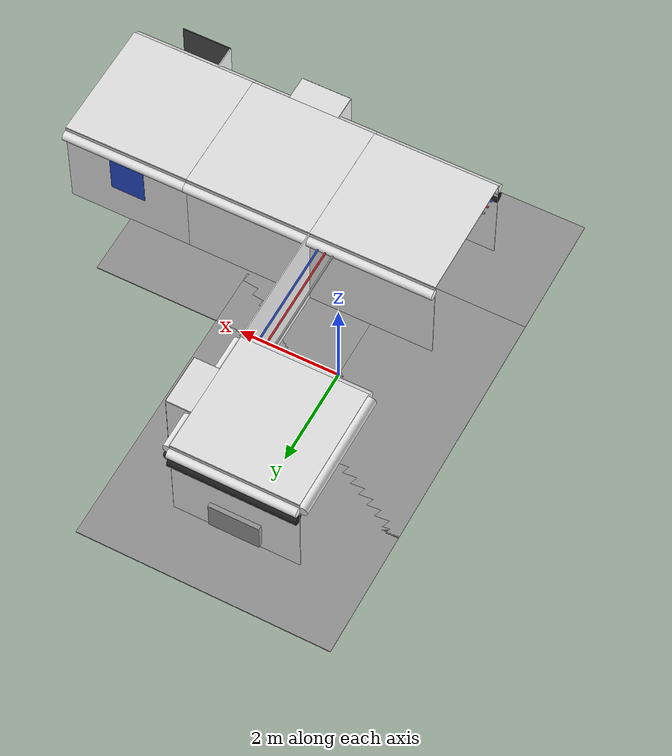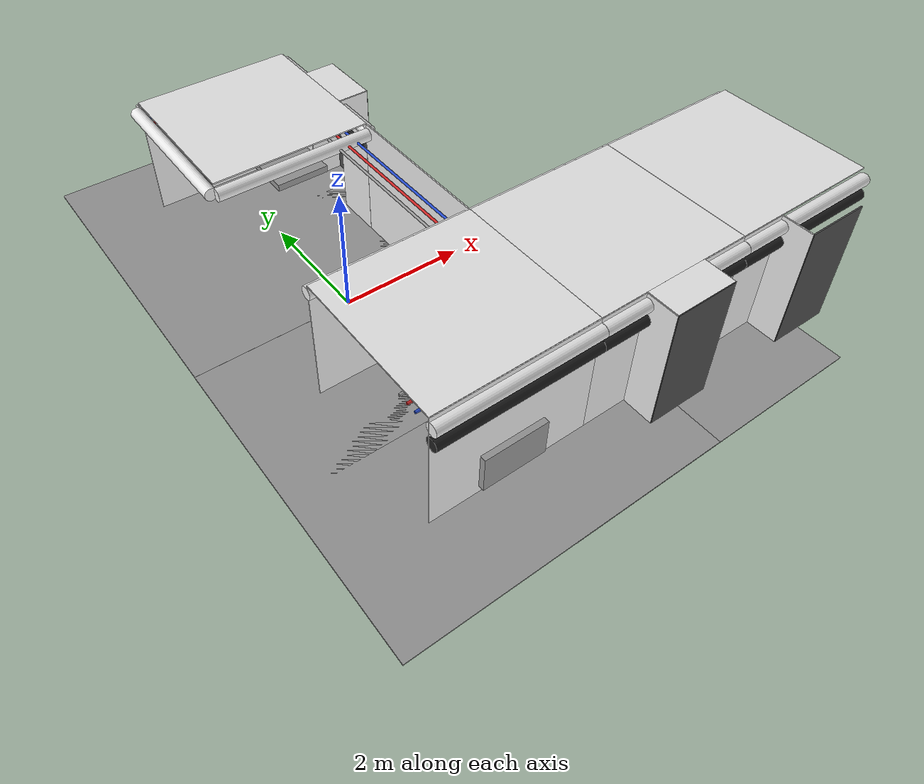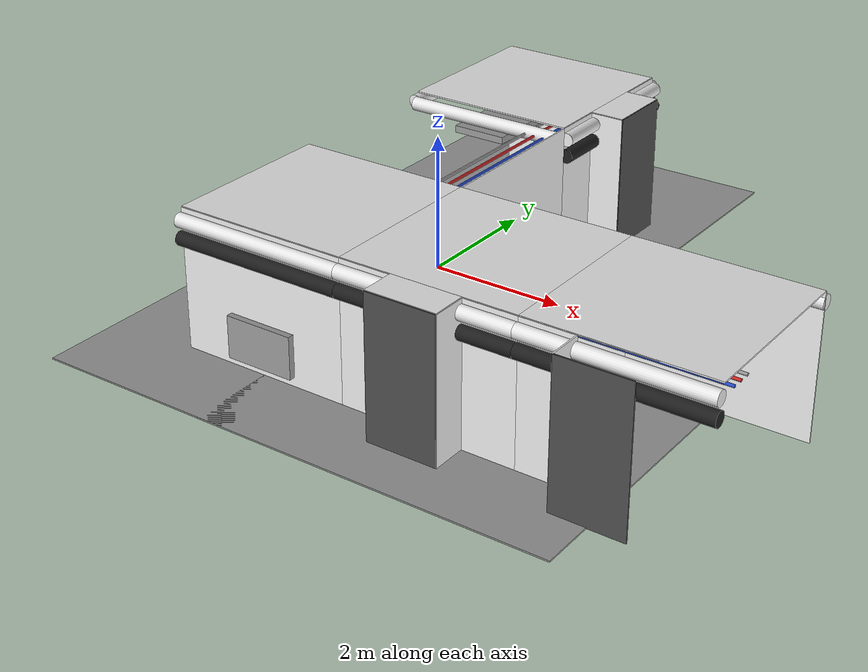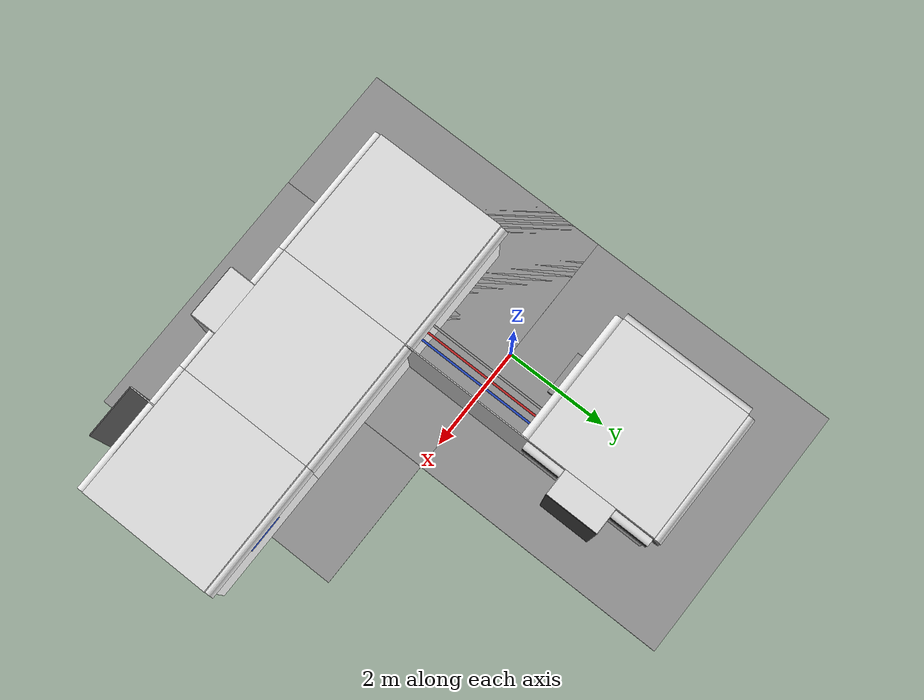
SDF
<sdf version="1.6">
 <world name="default">
  <model name="wall_right_0_0_0_0">
   <static>1</static>
   <pose>1.25 0.0 1.0 0.0 0.0 1.57</pose>
   <link name="link">
    <collision name="collision"><geometry><box><size>2.5 0.02 2.0</size></box></geometry></collision>
    <visual name="visual">
     <material>
      <script><name>Gazebo/White</name><uri>file://media/materials/scripts/gazebo.material</uri></script>
     </material>
     <geometry><box><size>2.5 0.02 2.0</size></box></geometry>
    </visual>
   </link>
  </model>
  <model name="grey_pipe_right_0_0_0_0">
   <static>1</static>
   <pose>0.0 0.0 1.84 0.0 0.0 0.0</pose>
   <link name="link_0">
    <visual name="visual">
     <pose>0.7 0 0 1.57 0 0</pose>
     <geometry><cylinder><radius>0.02</radius><length>2.5</length></cylinder></geometry>
     <material>
      <script><uri>file://media/materials/scripts/gazebo.material</uri><name>Gazebo/Grey</name></script>
     </material>
    </visual>
    <collision name="collision">
     <pose>0.7 0 0 1.57 0 0</pose>
     <geometry><cylinder><radius>0.02</radius><length>2.5</length></cylinder></geometry>
    </collision>
   </link>
  </model>
  <model name="red_pipe_right_0_0_0_0">
   <static>1</static>
   <pose>0.0 0.0 1.84 0.0 0.0 0.0</pose>
   <link name="link_0">
    <visual name="visual">
     <pose>0.85 0 0 1.57 0 0</pose>
     <geometry><cylinder><radius>0.02</radius><length>2.5</length></cylinder></geometry>
     <material>
      <script><uri>file://media/materials/scripts/gazebo.material</uri><name>Gazebo/Red</name></script>
     </material>
    </visual>
    <collision name="collision">
     <pose>0.85 0 0 1.57 0 0</pose>
     <geometry><cylinder><radius>0.02</radius><length>2.5</length></cylinder></geometry>
    </collision>
   </link>
  </model>
  <model name="blue_pipe_right_0_0_0_0">
   <static>1</static>
   <pose>0.0 0.0 1.84 0.0 0.0 0.0</pose>
   <link name="link_0">
    <visual name="visual">
     <pose>1 0 0 1.57 0 0</pose>
     <geometry><cylinder><radius>0.02</radius><length>2.5</length></cylinder></geometry>
     <material>
      <script><uri>file://media/materials/scripts/gazebo.material</uri><name>Gazebo/Blue</name></script>
     </material>
    </visual>
    <collision name="collision">
     <pose>1 0 0 1.57 0 0</pose>
     <geometry><cylinder><radius>0.02</radius><length>2.5</length></cylinder></geometry>
    </collision>
   </link>
  </model>
  <model name="wall_bottom_0_0_0_0">
   <static>1</static>
   <link name="link">
    <collision name="collision"><geometry><box><size>5.0 5.0 0.02</size></box></geometry></collision>
    <visual name="visual">
     <material>
      <script><name>Gazebo/Grey</name><uri>file://media/materials/scripts/gazebo.material</uri></script>
     </material>
     <geometry><box><size>5.0 5.0 0.02</size></box></geometry>
    </visual>
   </link>
  </model>
  <model name="wall_front_0_1_0_3">
   <static>1</static>
   <pose>0.0 3.75 1.0 0.0 0.0 0.0</pose>
   <link name="link">
    <collision name="collision"><geometry><box><size>2.5 0.02 2.0</size></box></geometry></collision>
    <visual name="visual">
     <material>
      <script><name>Gazebo/White</name><uri>file://media/materials/scripts/gazebo.material</uri></script>
     </material>
     <geometry><box><size>2.5 0.02 2.0</size></box></geometry>
    </visual>
   </link>
  </model>
  <model name="wall_top_0_1_0_3">
   <static>1</static>
   <pose>0.0 2.5 2.0 1.57 0.0 0.0</pose>
   <link name="link">
    <collision name="collision"><geometry><box><size>2.5 0.02 2.5</size></box></geometry></collision>
    <visual name="visual">
     <material>
      <script><name>Gazebo/White</name><uri>file://media/materials/scripts/gazebo.material</uri></script>
     </material>
     <geometry><box><size>2.5 0.02 2.5</size></box></geometry>
    </visual>
   </link>
  </model>
  <model name="ceiling_1_0_1_0_3">
   <pose>0.0 1.5 1.7 0.0 0.0 0.0</pose>
   <link name="link_1">
    <visual name="visual">
     <geometry><box><size>0.8 1 0.1</size></box></geometry>
     <material>
      <script><uri>file://media/materials/scripts/gazebo.material</uri><name>Gazebo/Grey</name></script>
     </material>
    </visual>
    <collision name="collision"><geometry><box><size>0.8 1 0.1</size></box></geometry></collision>
   </link>
   <static>1</static>
  </model>
  <model name="white_pipe_left_0_1_0_3">
   <static>1</static>
   <pose>0.0 2.5 1.84 0.0 0.0 0.0</pose>
   <link name="link_0">
    <visual name="visual">
     <pose>-1.3 0 0 1.57 0 0</pose>
     <geometry><cylinder><radius>0.1</radius><length>2.5</length></cylinder></geometry>
     <material>
      <script><uri>file://media/materials/scripts/gazebo.material</uri><name>Gazebo/White</name></script>
     </material>
    </visual>
    <collision name="collision">
     <pose>-1.3 0 0 1.57 0 0</pose>
     <geometry><cylinder><radius>0.1</radius><length>2.5</length></cylinder></geometry>
    </collision>
   </link>
  </model>
  <model name="white_pipe_right_0_1_0_3">
   <static>1</static>
   <pose>0.0 2.5 1.84 0.0 0.0 0.0</pose>
   <link name="link_0">
    <visual name="visual">
     <pose>1.3 0 0 1.57 0 0</pose>
     <geometry><cylinder><radius>0.1</radius><length>2.5</length></cylinder></geometry>
     <material>
      <script><uri>file://media/materials/scripts/gazebo.material</uri><name>Gazebo/White</name></script>
     </material>
    </visual>
    <collision name="collision">
     <pose>1.3 0 0 1.57 0 0</pose>
     <geometry><cylinder><radius>0.1</radius><length>2.5</length></cylinder></geometry>
    </collision>
   </link>
  </model>
  <model name="black_pipe_right_0_1_0_3">
   <static>1</static>
   <pose>0.0 2.5 1.84 0.0 0.0 0.0</pose>
   <link name="link_0">
    <visual name="visual">
     <pose>1.3 0 -0.25 1.57 0 0</pose>
     <geometry><cylinder><radius>0.1</radius><length>2.5</length></cylinder></geometry>
     <material>
      <script><uri>file://media/materials/scripts/gazebo.material</uri><name>Gazebo/Black</name></script>
     </material>
    </visual>
    <collision name="collision">
     <pose>1.3 0 -0.25 1.57 0 0</pose>
     <geometry><cylinder><radius>0.1</radius><length>2.5</length></cylinder></geometry>
    </collision>
   </link>
  </model>
  <model name="grey_pipe_right_0_1_0_3">
   <static>1</static>
   <pose>0.0 2.5 1.84 0.0 0.0 0.0</pose>
   <link name="link_0">
    <visual name="visual">
     <pose>0.7 0 0 1.57 0 0</pose>
     <geometry><cylinder><radius>0.02</radius><length>2.5</length></cylinder></geometry>
     <material>
      <script><uri>file://media/materials/scripts/gazebo.material</uri><name>Gazebo/Grey</name></script>
     </material>
    </visual>
    <collision name="collision">
     <pose>0.7 0 0 1.57 0 0</pose>
     <geometry><cylinder><radius>0.02</radius><length>2.5</length></cylinder></geometry>
    </collision>
   </link>
  </model>
  <model name="red_pipe_right_0_1_0_3">
   <static>1</static>
   <pose>0.0 2.5 1.84 0.0 0.0 0.0</pose>
   <link name="link_0">
    <visual name="visual">
     <pose>0.85 0 0 1.57 0 0</pose>
     <geometry><cylinder><radius>0.02</radius><length>2.5</length></cylinder></geometry>
     <material>
      <script><uri>file://media/materials/scripts/gazebo.material</uri><name>Gazebo/Red</name></script>
     </material>
    </visual>
    <collision name="collision">
     <pose>0.85 0 0 1.57 0 0</pose>
     <geometry><cylinder><radius>0.02</radius><length>2.5</length></cylinder></geometry>
    </collision>
   </link>
  </model>
  <model name="blue_pipe_right_0_1_0_3">
   <static>1</static>
   <pose>0.0 2.5 1.84 0.0 0.0 0.0</pose>
   <link name="link_0">
    <visual name="visual">
     <pose>1 0 0 1.57 0 0</pose>
     <geometry><cylinder><radius>0.02</radius><length>2.5</length></cylinder></geometry>
     <material>
      <script><uri>file://media/materials/scripts/gazebo.material</uri><name>Gazebo/Blue</name></script>
     </material>
    </visual>
    <collision name="collision">
     <pose>1 0 0 1.57 0 0</pose>
     <geometry><cylinder><radius>0.02</radius><length>2.5</length></cylinder></geometry>
    </collision>
   </link>
  </model>
  <model name="white_pipe_left_1_0_1_0_3">
   <static>1</static>
   <pose>0.0 2.5 1.84 0.0 0.0 1.57</pose>
   <link name="link_0">
    <visual name="visual">
     <pose>-1.3 0 0 1.57 0 0</pose>
     <geometry><cylinder><radius>0.1</radius><length>2.5</length></cylinder></geometry>
     <material>
      <script><uri>file://media/materials/scripts/gazebo.material</uri><name>Gazebo/White</name></script>
     </material>
    </visual>
    <collision name="collision">
     <pose>-1.3 0 0 1.57 0 0</pose>
     <geometry><cylinder><radius>0.1</radius><length>2.5</length></cylinder></geometry>
    </collision>
   </link>
  </model>
  <model name="white_pipe_right_1_0_1_0_3">
   <static>1</static>
   <pose>0.0 2.5 1.84 0.0 0.0 1.57</pose>
   <link name="link_0">
    <visual name="visual">
     <pose>1.3 0 0 1.57 0 0</pose>
     <geometry><cylinder><radius>0.1</radius><length>2.5</length></cylinder></geometry>
     <material>
      <script><uri>file://media/materials/scripts/gazebo.material</uri><name>Gazebo/White</name></script>
     </material>
    </visual>
    <collision name="collision">
     <pose>1.3 0 0 1.57 0 0</pose>
     <geometry><cylinder><radius>0.1</radius><length>2.5</length></cylinder></geometry>
    </collision>
   </link>
  </model>
  <model name="black_pipe_right_1_0_1_0_3">
   <static>1</static>
   <pose>0.0 2.5 1.84 0.0 0.0 1.57</pose>
   <link name="link_0">
    <visual name="visual">
     <pose>1.3 0 -0.25 1.57 0 0</pose>
     <geometry><cylinder><radius>0.1</radius><length>2.5</length></cylinder></geometry>
     <material>
      <script><uri>file://media/materials/scripts/gazebo.material</uri><name>Gazebo/Black</name></script>
     </material>
    </visual>
    <collision name="collision">
     <pose>1.3 0 -0.25 1.57 0 0</pose>
     <geometry><cylinder><radius>0.1</radius><length>2.5</length></cylinder></geometry>
    </collision>
   </link>
  </model>
  <model name="grey_pipe_right_1_0_1_0_3">
   <static>1</static>
   <pose>0.0 2.5 1.84 0.0 0.0 1.57</pose>
   <link name="link_0">
    <visual name="visual">
     <pose>0.7 0 0 1.57 0 0</pose>
     <geometry><cylinder><radius>0.02</radius><length>2.5</length></cylinder></geometry>
     <material>
      <script><uri>file://media/materials/scripts/gazebo.material</uri><name>Gazebo/Grey</name></script>
     </material>
    </visual>
    <collision name="collision">
     <pose>0.7 0 0 1.57 0 0</pose>
     <geometry><cylinder><radius>0.02</radius><length>2.5</length></cylinder></geometry>
    </collision>
   </link>
  </model>
  <model name="red_pipe_right_1_0_1_0_3">
   <static>1</static>
   <pose>0.0 2.5 1.84 0.0 0.0 1.57</pose>
   <link name="link_0">
    <visual name="visual">
     <pose>0.85 0 0 1.57 0 0</pose>
     <geometry><cylinder><radius>0.02</radius><length>2.5</length></cylinder></geometry>
     <material>
      <script><uri>file://media/materials/scripts/gazebo.material</uri><name>Gazebo/Red</name></script>
     </material>
    </visual>
    <collision name="collision">
     <pose>0.85 0 0 1.57 0 0</pose>
     <geometry><cylinder><radius>0.02</radius><length>2.5</length></cylinder></geometry>
    </collision>
   </link>
  </model>
  <model name="blue_pipe_right_1_0_1_0_3">
   <static>1</static>
   <pose>0.0 2.5 1.84 0.0 0.0 1.57</pose>
   <link name="link_0">
    <visual name="visual">
     <pose>1 0 0 1.57 0 0</pose>
     <geometry><cylinder><radius>0.02</radius><length>2.5</length></cylinder></geometry>
     <material>
      <script><uri>file://media/materials/scripts/gazebo.material</uri><name>Gazebo/Blue</name></script>
     </material>
    </visual>
    <collision name="collision">
     <pose>1 0 0 1.57 0 0</pose>
     <geometry><cylinder><radius>0.02</radius><length>2.5</length></cylinder></geometry>
    </collision>
   </link>
  </model>
  <model name="wall_bottom_0_1_0_3">
   <static>1</static>
   <pose>0.0 2.5 0.0 0.0 0.0 0.0</pose>
   <link name="link">
    <collision name="collision"><geometry><box><size>5.0 5.0 0.02</size></box></geometry></collision>
    <visual name="visual">
     <material>
      <script><name>Gazebo/Grey</name><uri>file://media/materials/scripts/gazebo.material</uri></script>
     </material>
     <geometry><box><size>5.0 5.0 0.02</size></box></geometry>
    </visual>
   </link>
  </model>
  <model name="wall_right_front_left_0_1_0_3">
   <static>1</static>
   <pose>1.25 3.375 1.0 0.0 0.0 1.57</pose>
   <link name="link">
    <collision name="collision"><geometry><box><size>0.75 0.02 2.0</size></box></geometry></collision>
    <visual name="visual">
     <material>
      <script><name>Gazebo/White</name><uri>file://media/materials/scripts/gazebo.material</uri></script>
     </material>
     <geometry><box><size>0.75 0.02 2.0</size></box></geometry>
    </visual>
   </link>
  </model>
  <model name="wall_right_front_right_0_1_0_3">
   <static>1</static>
   <pose>1.25 1.625 1.0 0.0 0.0 1.57</pose>
   <link name="link">
    <collision name="collision"><geometry><box><size>0.75 0.02 2.0</size></box></geometry></collision>
    <visual name="visual">
     <material>
      <script><name>Gazebo/White</name><uri>file://media/materials/scripts/gazebo.material</uri></script>
     </material>
     <geometry><box><size>0.75 0.02 2.0</size></box></geometry>
    </visual>
   </link>
  </model>
  <model name="wall_right_front_up_0_1_0_3">
   <static>1</static>
   <pose>1.25 2.5 2.0 0.0 0.0 1.57</pose>
   <link name="link">
    <collision name="collision"><geometry><box><size>1.0 0.02 0.001</size></box></geometry></collision>
    <visual name="visual">
     <material>
      <script><name>Gazebo/White</name><uri>file://media/materials/scripts/gazebo.material</uri></script>
     </material>
     <geometry><box><size>1.0 0.02 0.001</size></box></geometry>
    </visual>
   </link>
  </model>
  <model name="wall_right_inside_back_0_1_0_3">
   <static>1</static>
   <pose>1.75 2.5 1.0 0.0 0.0 1.57</pose>
   <link name="link">
    <collision name="collision"><geometry><box><size>1 0.02 2</size></box></geometry></collision>
    <visual name="visual">
     <material>
      <script><name>Gazebo/DarkGrey</name><uri>file://media/materials/scripts/gazebo.material</uri></script>
     </material>
     <geometry><box><size>1 0.02 2</size></box></geometry>
    </visual>
   </link>
  </model>
  <model name="wall_right_inside_left_0_1_0_3">
   <static>1</static>
   <pose>1.5 3.0 1.0 0.0 0.0 0.0</pose>
   <link name="link">
    <collision name="collision"><geometry><box><size>0.5 0.02 2</size></box></geometry></collision>
    <visual name="visual">
     <material>
      <script><name>Gazebo/White</name><uri>file://media/materials/scripts/gazebo.material</uri></script>
     </material>
     <geometry><box><size>0.5 0.02 2</size></box></geometry>
    </visual>
   </link>
  </model>
  <model name="wall_right_inside_right_0_1_0_3">
   <static>1</static>
   <pose>1.5 2.0 1.0 0.0 0.0 0.0</pose>
   <link name="link">
    <collision name="collision"><geometry><box><size>0.5 0.02 2</size></box></geometry></collision>
    <visual name="visual">
     <material>
      <script><name>Gazebo/White</name><uri>file://media/materials/scripts/gazebo.material</uri></script>
     </material>
     <geometry><box><size>0.5 0.02 2</size></box></geometry>
    </visual>
   </link>
  </model>
  <model name="wall_right_inside_top_0_1_0_3">
   <static>1</static>
   <pose>1.5 2.5 2.0 1.57 0.0 1.57</pose>
   <link name="link">
    <collision name="collision"><geometry><box><size>1 0.02 0.5</size></box></geometry></collision>
    <visual name="visual">
     <material>
      <script><name>Gazebo/White</name><uri>file://media/materials/scripts/gazebo.material</uri></script>
     </material>
     <geometry><box><size>1 0.02 0.5</size></box></geometry>
    </visual>
   </link>
  </model>
  <model name="panel_0_1_0_3">
   <static>1</static>
   <pose>0.0 3.75 0.44 0.0 0.0 1.57</pose>
   <link name="link">
    <collision name="collision"><geometry><box><size>0.2 1 0.6</size></box></geometry></collision>
    <visual name="visual">
     <material>
      <script><name>Gazebo/Grey</name><uri>file://media/materials/scripts/gazebo.material</uri></script>
     </material>
     <geometry><box><size>0.2 1 0.6</size></box></geometry>
    </visual>
   </link>
  </model>
  <model name="wall_right_0_-1_0_1">
   <static>1</static>
   <pose>0.0 -3.75 1.0 0.0 0.0 0.0</pose>
   <link name="link">
    <collision name="collision"><geometry><box><size>2.5 0.02 2.0</size></box></geometry></collision>
    <visual name="visual">
     <material>
      <script><name>Gazebo/White</name><uri>file://media/materials/scripts/gazebo.material</uri></script>
     </material>
     <geometry><box><size>2.5 0.02 2.0</size></box></geometry>
    </visual>
   </link>
  </model>
  <model name="wall_left_0_-1_0_1">
   <static>1</static>
   <pose>0.0 -1.25 1.0 0.0 0.0 0.0</pose>
   <link name="link">
    <collision name="collision"><geometry><box><size>2.5 0.02 2.0</size></box></geometry></collision>
    <visual name="visual">
     <material>
      <script><name>Gazebo/White</name><uri>file://media/materials/scripts/gazebo.material</uri></script>
     </material>
     <geometry><box><size>2.5 0.02 2.0</size></box></geometry>
    </visual>
   </link>
  </model>
  <model name="wall_top_0_-1_0_1">
   <static>1</static>
   <pose>0.0 -2.5 2.0 1.57 0.0 -1.57</pose>
   <link name="link">
    <collision name="collision"><geometry><box><size>2.5 0.02 2.5</size></box></geometry></collision>
    <visual name="visual">
     <material>
      <script><name>Gazebo/White</name><uri>file://media/materials/scripts/gazebo.material</uri></script>
     </material>
     <geometry><box><size>2.5 0.02 2.5</size></box></geometry>
    </visual>
   </link>
  </model>
  <model name="ceiling_1_0_-1_0_1">
   <pose>0.0 -2.5 1.7 0.0 0.0 -1.57</pose>
   <link name="link_1">
    <visual name="visual">
     <geometry><box><size>0.8 1 0.1</size></box></geometry>
     <material>
      <script><uri>file://media/materials/scripts/gazebo.material</uri><name>Gazebo/Grey</name></script>
     </material>
    </visual>
    <collision name="collision"><geometry><box><size>0.8 1 0.1</size></box></geometry></collision>
   </link>
   <static>1</static>
  </model>
  <model name="ceiling_1_0_-1_2_1">
   <pose>1.0 -2.5 1.7 0.0 0.0 -1.57</pose>
   <link name="link_1">
    <visual name="visual">
     <geometry><box><size>0.8 1 0.1</size></box></geometry>
     <material>
      <script><uri>file://media/materials/scripts/gazebo.material</uri><name>Gazebo/Grey</name></script>
     </material>
    </visual>
    <collision name="collision"><geometry><box><size>0.8 1 0.1</size></box></geometry></collision>
   </link>
   <static>1</static>
  </model>
  <model name="white_pipe_left_0_-1_0_1">
   <static>1</static>
   <pose>0.0 -2.5 1.84 0.0 0.0 -1.57</pose>
   <link name="link_0">
    <visual name="visual">
     <pose>-1.3 0 0 1.57 0 0</pose>
     <geometry><cylinder><radius>0.1</radius><length>2.5</length></cylinder></geometry>
     <material>
      <script><uri>file://media/materials/scripts/gazebo.material</uri><name>Gazebo/White</name></script>
     </material>
    </visual>
    <collision name="collision">
     <pose>-1.3 0 0 1.57 0 0</pose>
     <geometry><cylinder><radius>0.1</radius><length>2.5</length></cylinder></geometry>
    </collision>
   </link>
  </model>
  <model name="white_pipe_right_0_-1_0_1">
   <static>1</static>
   <pose>0.0 -2.5 1.84 0.0 0.0 -1.57</pose>
   <link name="link_0">
    <visual name="visual">
     <pose>1.3 0 0 1.57 0 0</pose>
     <geometry><cylinder><radius>0.1</radius><length>2.5</length></cylinder></geometry>
     <material>
      <script><uri>file://media/materials/scripts/gazebo.material</uri><name>Gazebo/White</name></script>
     </material>
    </visual>
    <collision name="collision">
     <pose>1.3 0 0 1.57 0 0</pose>
     <geometry><cylinder><radius>0.1</radius><length>2.5</length></cylinder></geometry>
    </collision>
   </link>
  </model>
  <model name="black_pipe_right_0_-1_0_1">
   <static>1</static>
   <pose>0.0 -2.5 1.84 0.0 0.0 -1.57</pose>
   <link name="link_0">
    <visual name="visual">
     <pose>1.3 0 -0.25 1.57 0 0</pose>
     <geometry><cylinder><radius>0.1</radius><length>2.5</length></cylinder></geometry>
     <material>
      <script><uri>file://media/materials/scripts/gazebo.material</uri><name>Gazebo/Black</name></script>
     </material>
    </visual>
    <collision name="collision">
     <pose>1.3 0 -0.25 1.57 0 0</pose>
     <geometry><cylinder><radius>0.1</radius><length>2.5</length></cylinder></geometry>
    </collision>
   </link>
  </model>
  <model name="grey_pipe_right_0_-1_0_1">
   <static>1</static>
   <pose>0.0 -2.5 1.84 0.0 0.0 -1.57</pose>
   <link name="link_0">
    <visual name="visual">
     <pose>0.7 0 0 1.57 0 0</pose>
     <geometry><cylinder><radius>0.02</radius><length>2.5</length></cylinder></geometry>
     <material>
      <script><uri>file://media/materials/scripts/gazebo.material</uri><name>Gazebo/Grey</name></script>
     </material>
    </visual>
    <collision name="collision">
     <pose>0.7 0 0 1.57 0 0</pose>
     <geometry><cylinder><radius>0.02</radius><length>2.5</length></cylinder></geometry>
    </collision>
   </link>
  </model>
  <model name="red_pipe_right_0_-1_0_1">
   <static>1</static>
   <pose>0.0 -2.5 1.84 0.0 0.0 -1.57</pose>
   <link name="link_0">
    <visual name="visual">
     <pose>0.85 0 0 1.57 0 0</pose>
     <geometry><cylinder><radius>0.02</radius><length>2.5</length></cylinder></geometry>
     <material>
      <script><uri>file://media/materials/scripts/gazebo.material</uri><name>Gazebo/Red</name></script>
     </material>
    </visual>
    <collision name="collision">
     <pose>0.85 0 0 1.57 0 0</pose>
     <geometry><cylinder><radius>0.02</radius><length>2.5</length></cylinder></geometry>
    </collision>
   </link>
  </model>
  <model name="blue_pipe_right_0_-1_0_1">
   <static>1</static>
   <pose>0.0 -2.5 1.84 0.0 0.0 -1.57</pose>
   <link name="link_0">
    <visual name="visual">
     <pose>1 0 0 1.57 0 0</pose>
     <geometry><cylinder><radius>0.02</radius><length>2.5</length></cylinder></geometry>
     <material>
      <script><uri>file://media/materials/scripts/gazebo.material</uri><name>Gazebo/Blue</name></script>
     </material>
    </visual>
    <collision name="collision">
     <pose>1 0 0 1.57 0 0</pose>
     <geometry><cylinder><radius>0.02</radius><length>2.5</length></cylinder></geometry>
    </collision>
   </link>
  </model>
  <model name="wall_bottom_0_-1_0_1">
   <static>1</static>
   <pose>0.0 -2.5 0.0 0.0 0.0 -1.57</pose>
   <link name="link">
    <collision name="collision"><geometry><box><size>5.0 5.0 0.02</size></box></geometry></collision>
    <visual name="visual">
     <material>
      <script><name>Gazebo/Grey</name><uri>file://media/materials/scripts/gazebo.material</uri></script>
     </material>
     <geometry><box><size>5.0 5.0 0.02</size></box></geometry>
    </visual>
   </link>
  </model>
  <model name="panel_0_-1_0_1">
   <static>1</static>
   <pose>0.0 -3.75 0.44 0.0 0.0 -1.57</pose>
   <link name="link">
    <collision name="collision"><geometry><box><size>0.2 1 0.6</size></box></geometry></collision>
    <visual name="visual">
     <material>
      <script><name>Gazebo/Grey</name><uri>file://media/materials/scripts/gazebo.material</uri></script>
     </material>
     <geometry><box><size>0.2 1 0.6</size></box></geometry>
    </visual>
   </link>
  </model>
  <model name="wall_left_1_-1_0_1">
   <static>1</static>
   <pose>2.5 -1.25 1.0 0.0 0.0 0.0</pose>
   <link name="link">
    <collision name="collision"><geometry><box><size>2.5 0.02 2.0</size></box></geometry></collision>
    <visual name="visual">
     <material>
      <script><name>Gazebo/White</name><uri>file://media/materials/scripts/gazebo.material</uri></script>
     </material>
     <geometry><box><size>2.5 0.02 2.0</size></box></geometry>
    </visual>
   </link>
  </model>
  <model name="wall_top_1_-1_0_1">
   <static>1</static>
   <pose>2.5 -2.5 2.0 1.57 0.0 -1.57</pose>
   <link name="link">
    <collision name="collision"><geometry><box><size>2.5 0.02 2.5</size></box></geometry></collision>
    <visual name="visual">
     <material>
      <script><name>Gazebo/White</name><uri>file://media/materials/scripts/gazebo.material</uri></script>
     </material>
     <geometry><box><size>2.5 0.02 2.5</size></box></geometry>
    </visual>
   </link>
  </model>
  <model name="ceiling_1_1_-1_0_1">
   <pose>2.5 -2.5 1.7 0.0 0.0 -1.57</pose>
   <link name="link_1">
    <visual name="visual">
     <geometry><box><size>0.8 1 0.1</size></box></geometry>
     <material>
      <script><uri>file://media/materials/scripts/gazebo.material</uri><name>Gazebo/Grey</name></script>
     </material>
    </visual>
    <collision name="collision"><geometry><box><size>0.8 1 0.1</size></box></geometry></collision>
   </link>
   <static>1</static>
  </model>
  <model name="ceiling_1_1_-1_1_1">
   <pose>1.5 -2.5 1.7 0.0 0.0 -1.57</pose>
   <link name="link_1">
    <visual name="visual">
     <geometry><box><size>0.8 1 0.1</size></box></geometry>
     <material>
      <script><uri>file://media/materials/scripts/gazebo.material</uri><name>Gazebo/Grey</name></script>
     </material>
    </visual>
    <collision name="collision"><geometry><box><size>0.8 1 0.1</size></box></geometry></collision>
   </link>
   <static>1</static>
  </model>
  <model name="ceiling_1_1_-1_2_1">
   <pose>3.5 -2.5 1.7 0.0 0.0 -1.57</pose>
   <link name="link_1">
    <visual name="visual">
     <geometry><box><size>0.8 1 0.1</size></box></geometry>
     <material>
      <script><uri>file://media/materials/scripts/gazebo.material</uri><name>Gazebo/Grey</name></script>
     </material>
    </visual>
    <collision name="collision"><geometry><box><size>0.8 1 0.1</size></box></geometry></collision>
   </link>
   <static>1</static>
  </model>
  <model name="white_pipe_left_1_-1_0_1">
   <static>1</static>
   <pose>2.5 -2.5 1.84 0.0 0.0 -1.57</pose>
   <link name="link_0">
    <visual name="visual">
     <pose>-1.3 0 0 1.57 0 0</pose>
     <geometry><cylinder><radius>0.1</radius><length>2.5</length></cylinder></geometry>
     <material>
      <script><uri>file://media/materials/scripts/gazebo.material</uri><name>Gazebo/White</name></script>
     </material>
    </visual>
    <collision name="collision">
     <pose>-1.3 0 0 1.57 0 0</pose>
     <geometry><cylinder><radius>0.1</radius><length>2.5</length></cylinder></geometry>
    </collision>
   </link>
  </model>
  <model name="white_pipe_right_1_-1_0_1">
   <static>1</static>
   <pose>2.5 -2.5 1.84 0.0 0.0 -1.57</pose>
   <link name="link_0">
    <visual name="visual">
     <pose>1.3 0 0 1.57 0 0</pose>
     <geometry><cylinder><radius>0.1</radius><length>2.5</length></cylinder></geometry>
     <material>
      <script><uri>file://media/materials/scripts/gazebo.material</uri><name>Gazebo/White</name></script>
     </material>
    </visual>
    <collision name="collision">
     <pose>1.3 0 0 1.57 0 0</pose>
     <geometry><cylinder><radius>0.1</radius><length>2.5</length></cylinder></geometry>
    </collision>
   </link>
  </model>
  <model name="black_pipe_right_1_-1_0_1">
   <static>1</static>
   <pose>2.5 -2.5 1.84 0.0 0.0 -1.57</pose>
   <link name="link_0">
    <visual name="visual">
     <pose>1.3 0 -0.25 1.57 0 0</pose>
     <geometry><cylinder><radius>0.1</radius><length>2.5</length></cylinder></geometry>
     <material>
      <script><uri>file://media/materials/scripts/gazebo.material</uri><name>Gazebo/Black</name></script>
     </material>
    </visual>
    <collision name="collision">
     <pose>1.3 0 -0.25 1.57 0 0</pose>
     <geometry><cylinder><radius>0.1</radius><length>2.5</length></cylinder></geometry>
    </collision>
   </link>
  </model>
  <model name="grey_pipe_right_1_-1_0_1">
   <static>1</static>
   <pose>2.5 -2.5 1.84 0.0 0.0 -1.57</pose>
   <link name="link_0">
    <visual name="visual">
     <pose>0.7 0 0 1.57 0 0</pose>
     <geometry><cylinder><radius>0.02</radius><length>2.5</length></cylinder></geometry>
     <material>
      <script><uri>file://media/materials/scripts/gazebo.material</uri><name>Gazebo/Grey</name></script>
     </material>
    </visual>
    <collision name="collision">
     <pose>0.7 0 0 1.57 0 0</pose>
     <geometry><cylinder><radius>0.02</radius><length>2.5</length></cylinder></geometry>
    </collision>
   </link>
  </model>
  <model name="red_pipe_right_1_-1_0_1">
   <static>1</static>
   <pose>2.5 -2.5 1.84 0.0 0.0 -1.57</pose>
   <link name="link_0">
    <visual name="visual">
     <pose>0.85 0 0 1.57 0 0</pose>
     <geometry><cylinder><radius>0.02</radius><length>2.5</length></cylinder></geometry>
     <material>
      <script><uri>file://media/materials/scripts/gazebo.material</uri><name>Gazebo/Red</name></script>
     </material>
    </visual>
    <collision name="collision">
     <pose>0.85 0 0 1.57 0 0</pose>
     <geometry><cylinder><radius>0.02</radius><length>2.5</length></cylinder></geometry>
    </collision>
   </link>
  </model>
  <model name="blue_pipe_right_1_-1_0_1">
   <static>1</static>
   <pose>2.5 -2.5 1.84 0.0 0.0 -1.57</pose>
   <link name="link_0">
    <visual name="visual">
     <pose>1 0 0 1.57 0 0</pose>
     <geometry><cylinder><radius>0.02</radius><length>2.5</length></cylinder></geometry>
     <material>
      <script><uri>file://media/materials/scripts/gazebo.material</uri><name>Gazebo/Blue</name></script>
     </material>
    </visual>
    <collision name="collision">
     <pose>1 0 0 1.57 0 0</pose>
     <geometry><cylinder><radius>0.02</radius><length>2.5</length></cylinder></geometry>
    </collision>
   </link>
  </model>
  <model name="wall_right_front_left_1_-1_0_1">
   <static>1</static>
   <pose>3.375 -3.75 1.0 0.0 0.0 0.0</pose>
   <link name="link">
    <collision name="collision"><geometry><box><size>0.75 0.02 2.0</size></box></geometry></collision>
    <visual name="visual">
     <material>
      <script><name>Gazebo/White</name><uri>file://media/materials/scripts/gazebo.material</uri></script>
     </material>
     <geometry><box><size>0.75 0.02 2.0</size></box></geometry>
    </visual>
   </link>
  </model>
  <model name="wall_right_front_right_1_-1_0_1">
   <static>1</static>
   <pose>1.625 -3.75 1.0 0.0 0.0 0.0</pose>
   <link name="link">
    <collision name="collision"><geometry><box><size>0.75 0.02 2.0</size></box></geometry></collision>
    <visual name="visual">
     <material>
      <script><name>Gazebo/White</name><uri>file://media/materials/scripts/gazebo.material</uri></script>
     </material>
     <geometry><box><size>0.75 0.02 2.0</size></box></geometry>
    </visual>
   </link>
  </model>
  <model name="wall_right_front_up_1_-1_0_1">
   <static>1</static>
   <pose>2.5 -3.75 2.0 0.0 0.0 0.0</pose>
   <link name="link">
    <collision name="collision"><geometry><box><size>1.0 0.02 0.001</size></box></geometry></collision>
    <visual name="visual">
     <material>
      <script><name>Gazebo/White</name><uri>file://media/materials/scripts/gazebo.material</uri></script>
     </material>
     <geometry><box><size>1.0 0.02 0.001</size></box></geometry>
    </visual>
   </link>
  </model>
  <model name="wall_right_inside_back_1_-1_0_1">
   <static>1</static>
   <pose>2.5 -4.25 1.0 0.0 0.0 0.0</pose>
   <link name="link">
    <collision name="collision"><geometry><box><size>1 0.02 2</size></box></geometry></collision>
    <visual name="visual">
     <material>
      <script><name>Gazebo/DarkGrey</name><uri>file://media/materials/scripts/gazebo.material</uri></script>
     </material>
     <geometry><box><size>1 0.02 2</size></box></geometry>
    </visual>
   </link>
  </model>
  <model name="wall_right_inside_left_1_-1_0_1">
   <static>1</static>
   <pose>3.0 -4.0 1.0 0.0 0.0 -1.57</pose>
   <link name="link">
    <collision name="collision"><geometry><box><size>0.5 0.02 2</size></box></geometry></collision>
    <visual name="visual">
     <material>
      <script><name>Gazebo/White</name><uri>file://media/materials/scripts/gazebo.material</uri></script>
     </material>
     <geometry><box><size>0.5 0.02 2</size></box></geometry>
    </visual>
   </link>
  </model>
  <model name="wall_right_inside_right_1_-1_0_1">
   <static>1</static>
   <pose>2.0 -4.0 1.0 0.0 0.0 -1.57</pose>
   <link name="link">
    <collision name="collision"><geometry><box><size>0.5 0.02 2</size></box></geometry></collision>
    <visual name="visual">
     <material>
      <script><name>Gazebo/White</name><uri>file://media/materials/scripts/gazebo.material</uri></script>
     </material>
     <geometry><box><size>0.5 0.02 2</size></box></geometry>
    </visual>
   </link>
  </model>
  <model name="wall_right_inside_top_1_-1_0_1">
   <static>1</static>
   <pose>2.5 -4.0 2.0 1.57 0.0 0.0</pose>
   <link name="link">
    <collision name="collision"><geometry><box><size>1 0.02 0.5</size></box></geometry></collision>
    <visual name="visual">
     <material>
      <script><name>Gazebo/White</name><uri>file://media/materials/scripts/gazebo.material</uri></script>
     </material>
     <geometry><box><size>1 0.02 0.5</size></box></geometry>
    </visual>
   </link>
  </model>
  <model name="wall_bottom_1_-1_0_1">
   <static>1</static>
   <pose>2.5 -2.5 0.0 0.0 0.0 -1.57</pose>
   <link name="link">
    <collision name="collision"><geometry><box><size>5.0 5.0 0.02</size></box></geometry></collision>
    <visual name="visual">
     <material>
      <script><name>Gazebo/Grey</name><uri>file://media/materials/scripts/gazebo.material</uri></script>
     </material>
     <geometry><box><size>5.0 5.0 0.02</size></box></geometry>
    </visual>
   </link>
  </model>
  <model name="wall_left_2_-1_0_1">
   <static>1</static>
   <pose>5.0 -1.25 1.0 0.0 0.0 0.0</pose>
   <link name="link">
    <collision name="collision"><geometry><box><size>2.5 0.02 2.0</size></box></geometry></collision>
    <visual name="visual">
     <material>
      <script><name>Gazebo/White</name><uri>file://media/materials/scripts/gazebo.material</uri></script>
     </material>
     <geometry><box><size>2.5 0.02 2.0</size></box></geometry>
    </visual>
   </link>
  </model>
  <model name="wall_top_2_-1_0_1">
   <static>1</static>
   <pose>5.0 -2.5 2.0 1.57 0.0 -1.57</pose>
   <link name="link">
    <collision name="collision"><geometry><box><size>2.5 0.02 2.5</size></box></geometry></collision>
    <visual name="visual">
     <material>
      <script><name>Gazebo/White</name><uri>file://media/materials/scripts/gazebo.material</uri></script>
     </material>
     <geometry><box><size>2.5 0.02 2.5</size></box></geometry>
    </visual>
   </link>
  </model>
  <model name="ceiling_1_2_-1_0_1">
   <pose>5.0 -2.5 1.7 0.0 0.0 -1.57</pose>
   <link name="link_1">
    <visual name="visual">
     <geometry><box><size>0.8 1 0.1</size></box></geometry>
     <material>
      <script><uri>file://media/materials/scripts/gazebo.material</uri><name>Gazebo/Grey</name></script>
     </material>
    </visual>
    <collision name="collision"><geometry><box><size>0.8 1 0.1</size></box></geometry></collision>
   </link>
   <static>1</static>
  </model>
  <model name="ceiling_1_2_-1_1_1">
   <pose>4.0 -2.5 1.7 0.0 0.0 -1.57</pose>
   <link name="link_1">
    <visual name="visual">
     <geometry><box><size>0.8 1 0.1</size></box></geometry>
     <material>
      <script><uri>file://media/materials/scripts/gazebo.material</uri><name>Gazebo/Grey</name></script>
     </material>
    </visual>
    <collision name="collision"><geometry><box><size>0.8 1 0.1</size></box></geometry></collision>
   </link>
   <static>1</static>
  </model>
  <model name="white_pipe_left_2_-1_0_1">
   <static>1</static>
   <pose>5.0 -2.5 1.84 0.0 0.0 -1.57</pose>
   <link name="link_0">
    <visual name="visual">
     <pose>-1.3 0 0 1.57 0 0</pose>
     <geometry><cylinder><radius>0.1</radius><length>2.5</length></cylinder></geometry>
     <material>
      <script><uri>file://media/materials/scripts/gazebo.material</uri><name>Gazebo/White</name></script>
     </material>
    </visual>
    <collision name="collision">
     <pose>-1.3 0 0 1.57 0 0</pose>
     <geometry><cylinder><radius>0.1</radius><length>2.5</length></cylinder></geometry>
    </collision>
   </link>
  </model>
  <model name="white_pipe_right_2_-1_0_1">
   <static>1</static>
   <pose>5.0 -2.5 1.84 0.0 0.0 -1.57</pose>
   <link name="link_0">
    <visual name="visual">
     <pose>1.3 0 0 1.57 0 0</pose>
     <geometry><cylinder><radius>0.1</radius><length>2.5</length></cylinder></geometry>
     <material>
      <script><uri>file://media/materials/scripts/gazebo.material</uri><name>Gazebo/White</name></script>
     </material>
    </visual>
    <collision name="collision">
     <pose>1.3 0 0 1.57 0 0</pose>
     <geometry><cylinder><radius>0.1</radius><length>2.5</length></cylinder></geometry>
    </collision>
   </link>
  </model>
  <model name="black_pipe_right_2_-1_0_1">
   <static>1</static>
   <pose>5.0 -2.5 1.84 0.0 0.0 -1.57</pose>
   <link name="link_0">
    <visual name="visual">
     <pose>1.3 0 -0.25 1.57 0 0</pose>
     <geometry><cylinder><radius>0.1</radius><length>2.5</length></cylinder></geometry>
     <material>
      <script><uri>file://media/materials/scripts/gazebo.material</uri><name>Gazebo/Black</name></script>
     </material>
    </visual>
    <collision name="collision">
     <pose>1.3 0 -0.25 1.57 0 0</pose>
     <geometry><cylinder><radius>0.1</radius><length>2.5</length></cylinder></geometry>
    </collision>
   </link>
  </model>
  <model name="grey_pipe_right_2_-1_0_1">
   <static>1</static>
   <pose>5.0 -2.5 1.84 0.0 0.0 -1.57</pose>
   <link name="link_0">
    <visual name="visual">
     <pose>0.7 0 0 1.57 0 0</pose>
     <geometry><cylinder><radius>0.02</radius><length>2.5</length></cylinder></geometry>
     <material>
      <script><uri>file://media/materials/scripts/gazebo.material</uri><name>Gazebo/Grey</name></script>
     </material>
    </visual>
    <collision name="collision">
     <pose>0.7 0 0 1.57 0 0</pose>
     <geometry><cylinder><radius>0.02</radius><length>2.5</length></cylinder></geometry>
    </collision>
   </link>
  </model>
  <model name="red_pipe_right_2_-1_0_1">
   <static>1</static>
   <pose>5.0 -2.5 1.84 0.0 0.0 -1.57</pose>
   <link name="link_0">
    <visual name="visual">
     <pose>0.85 0 0 1.57 0 0</pose>
     <geometry><cylinder><radius>0.02</radius><length>2.5</length></cylinder></geometry>
     <material>
      <script><uri>file://media/materials/scripts/gazebo.material</uri><name>Gazebo/Red</name></script>
     </material>
    </visual>
    <collision name="collision">
     <pose>0.85 0 0 1.57 0 0</pose>
     <geometry><cylinder><radius>0.02</radius><length>2.5</length></cylinder></geometry>
    </collision>
   </link>
  </model>
  <model name="blue_pipe_right_2_-1_0_1">
   <static>1</static>
   <pose>5.0 -2.5 1.84 0.0 0.0 -1.57</pose>
   <link name="link_0">
    <visual name="visual">
     <pose>1 0 0 1.57 0 0</pose>
     <geometry><cylinder><radius>0.02</radius><length>2.5</length></cylinder></geometry>
     <material>
      <script><uri>file://media/materials/scripts/gazebo.material</uri><name>Gazebo/Blue</name></script>
     </material>
    </visual>
    <collision name="collision">
     <pose>1 0 0 1.57 0 0</pose>
     <geometry><cylinder><radius>0.02</radius><length>2.5</length></cylinder></geometry>
    </collision>
   </link>
  </model>
  <model name="panel_2_-1_0_1">
   <static>1</static>
   <pose>5.0 -1.25 1.3 0.0 0.0 -1.57</pose>
   <link name="link">
    <collision name="collision"><geometry><box><size>0.04 0.7 1</size></box></geometry></collision>
    <visual name="visual">
     <material>
      <script><name>Gazebo/Blue</name><uri>file://media/materials/scripts/gazebo.material</uri></script>
     </material>
     <geometry><box><size>0.04 0.7 1</size></box></geometry>
    </visual>
   </link>
  </model>
  <model name="wall_right_front_right_2_-1_0_1">
   <static>1</static>
   <pose>4.125 -3.75 1.0 0.0 0.0 0.0</pose>
   <link name="link">
    <collision name="collision"><geometry><box><size>0.75 0.02 2.0</size></box></geometry></collision>
    <visual name="visual">
     <material>
      <script><name>Gazebo/White</name><uri>file://media/materials/scripts/gazebo.material</uri></script>
     </material>
     <geometry><box><size>0.75 0.02 2.0</size></box></geometry>
    </visual>
   </link>
  </model>
  <model name="wall_right_front_up_2_-1_0_1">
   <static>1</static>
   <pose>5.0 -3.75 2.0 0.0 0.0 0.0</pose>
   <link name="link">
    <collision name="collision"><geometry><box><size>1.0 0.02 0.001</size></box></geometry></collision>
    <visual name="visual">
     <material>
      <script><name>Gazebo/White</name><uri>file://media/materials/scripts/gazebo.material</uri></script>
     </material>
     <geometry><box><size>1.0 0.02 0.001</size></box></geometry>
    </visual>
   </link>
  </model>
  <model name="wall_right_inside_back_2_-1_0_1">
   <static>1</static>
   <pose>5.0 -4.25 1.0 0.0 0.0 0.0</pose>
   <link name="link">
    <collision name="collision"><geometry><box><size>1 0.02 2</size></box></geometry></collision>
    <visual name="visual">
     <material>
      <script><name>Gazebo/DarkGrey</name><uri>file://media/materials/scripts/gazebo.material</uri></script>
     </material>
     <geometry><box><size>1 0.02 2</size></box></geometry>
    </visual>
   </link>
  </model>
  <model name="wall_right_inside_right_2_-1_0_1">
   <static>1</static>
   <pose>4.5 -4.0 1.0 0.0 0.0 -1.57</pose>
   <link name="link">
    <collision name="collision"><geometry><box><size>0.5 0.02 2</size></box></geometry></collision>
    <visual name="visual">
     <material>
      <script><name>Gazebo/White</name><uri>file://media/materials/scripts/gazebo.material</uri></script>
     </material>
     <geometry><box><size>0.5 0.02 2</size></box></geometry>
    </visual>
   </link>
  </model>
 </world>
</sdf>
